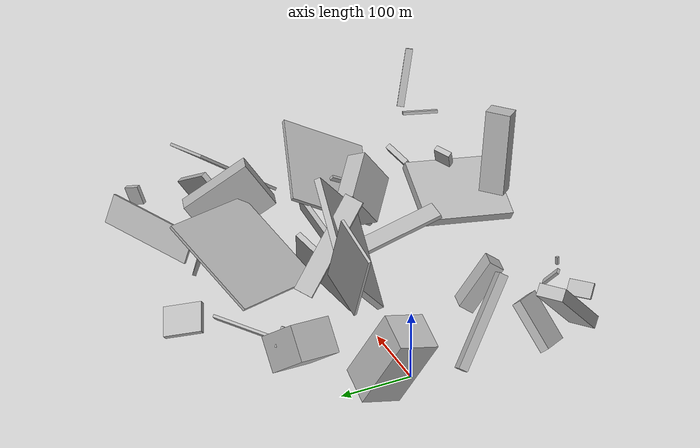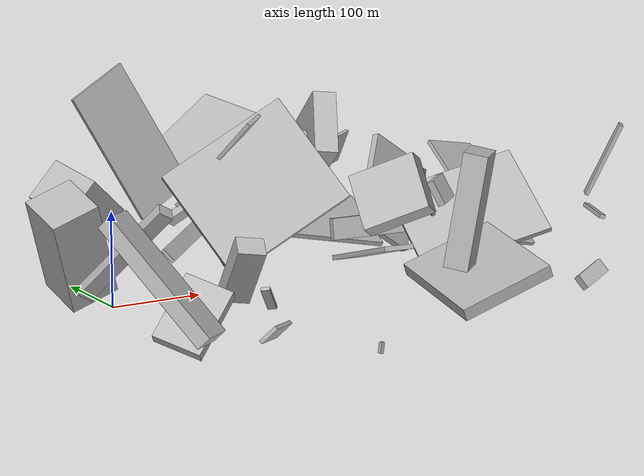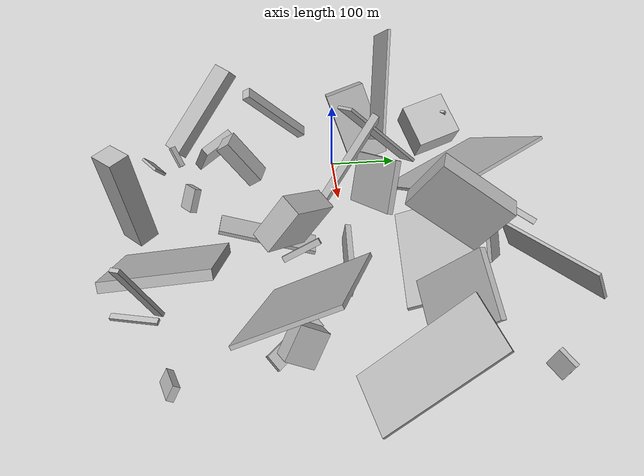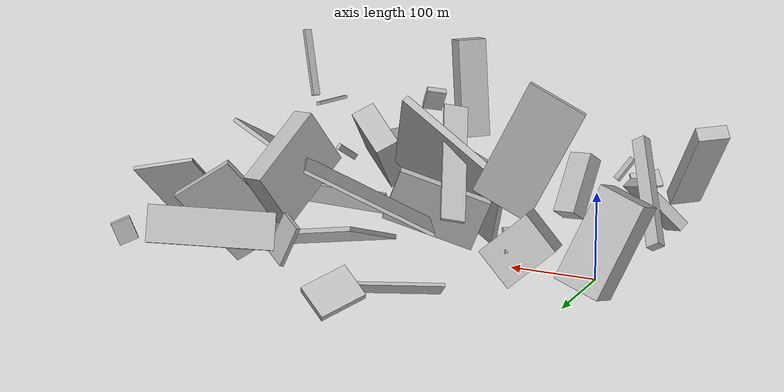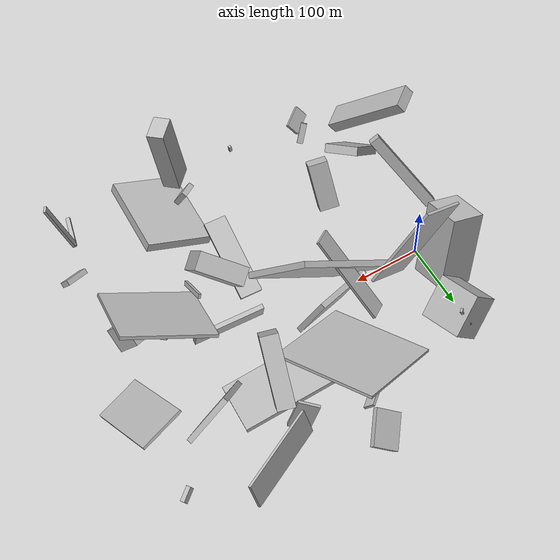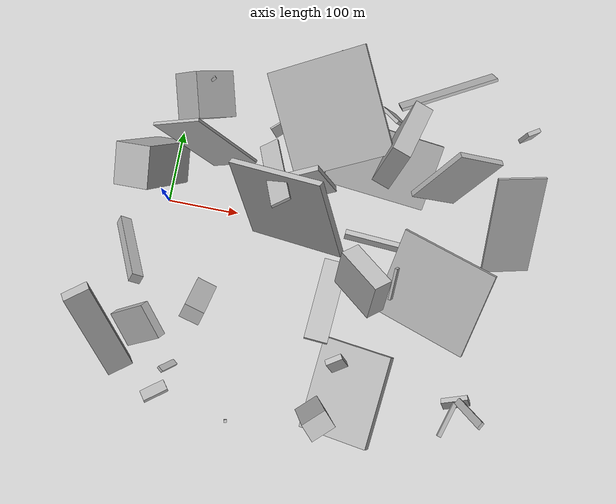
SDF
<sdf version="1.6">
 <world name="default">
  <scene>
   <sky><clouds><speed>12</speed></clouds></sky>
   <ambient>0.4 0.4 0.4 1</ambient>
   <background>0.7 0.7 0.7 1</background>
   <shadows>1</shadows>
  </scene>
  <gravity>0 0 -9.8066</gravity>
  <magnetic_field>6e-06 2.3e-05 -4.2e-05</magnetic_field>
  <physics default="0" name="default_physics" type="ode">
   <ode>
    <solver>
     <type>quick</type>
     <iters>10</iters>
     <sor>1.0</sor>
     <use_dynamic_moi_rescaling>0</use_dynamic_moi_rescaling>
    </solver>
    <constraints>
     <cfm>0</cfm>
     <erp>0.2</erp>
     <contact_max_correcting_vel>100</contact_max_correcting_vel>
     <contact_surface_layer>0.001</contact_surface_layer>
    </constraints>
   </ode>
   <max_step_size>0.004</max_step_size>
   <real_time_factor>1</real_time_factor>
   <real_time_update_rate>250</real_time_update_rate>
  </physics>
  <light name="sun" type="directional">
   <pose>0 0 10 0 0 0</pose>
   <diffuse>0.8 0.8 0.8 1</diffuse>
   <specular>0.2 0.2 0.2 1</specular>
   <attenuation>
    <range>1000</range>
    <constant>0.9</constant>
    <linear>0.01</linear>
    <quadratic>0.001</quadratic>
   </attenuation>
   <direction>-0.5 0.1 -0.9</direction>
  </light>
  <model name="building_1">
   <static>0</static>
   <pose>32.23924632587637 167.98821461134958 93.496382486021 -2.853511444051879 -0.9696005379585929 -1.0242284796814187</pose>
   <link name="link">
    <gravity>0</gravity>
    <pose>0 0 2.0 0 0 0</pose>
    <collision name="collision"><geometry><box><size>28 12 4</size></box></geometry></collision>
    <visual name="visual">
     <cast_shadows>0</cast_shadows>
     <geometry><box><size>28 12 4</size></box></geometry>
     <material>
      <script>
       <uri>model://HANNAS_wall/materials/scripts</uri>
       <uri>model://HANNAS_wall/materials/textures</uri>
       <name>vrc/HANNAS_wall</name>
      </script>
     </material>
    </visual>
   </link>
  </model>
  <model name="building_2">
   <static>0</static>
   <pose>-19.138040544420818 -164.57411652920075 40.58281139923651 -1.9480340134878802 -0.6900854163919891 -2.2171353671049476</pose>
   <link name="link">
    <gravity>0</gravity>
    <pose>0 0 26.0 0 0 0</pose>
    <collision name="collision"><geometry><box><size>13 73 52</size></box></geometry></collision>
    <visual name="visual">
     <cast_shadows>0</cast_shadows>
     <geometry><box><size>13 73 52</size></box></geometry>
     <material>
      <script>
       <uri>model://HANNAS_wall/materials/scripts</uri>
       <uri>model://HANNAS_wall/materials/textures</uri>
       <name>vrc/HANNAS_wall</name>
      </script>
     </material>
    </visual>
   </link>
  </model>
  <model name="building_3">
   <static>0</static>
   <pose>470.1156398621106 -198.74243483336562 27.193890512011933 -2.0633390087643213 -0.8798722783177413 2.2922697935301337</pose>
   <link name="link">
    <gravity>0</gravity>
    <pose>0 0 19.0 0 0 0</pose>
    <collision name="collision"><geometry><box><size>16 8 38</size></box></geometry></collision>
    <visual name="visual">
     <cast_shadows>0</cast_shadows>
     <geometry><box><size>16 8 38</size></box></geometry>
     <material>
      <script>
       <uri>model://HANNAS_wall/materials/scripts</uri>
       <uri>model://HANNAS_wall/materials/textures</uri>
       <name>vrc/HANNAS_wall</name>
      </script>
     </material>
    </visual>
   </link>
  </model>
  <model name="building_4">
   <static>0</static>
   <pose>169.8509307744462 3.0339183259878624 107.54974338801176 2.2946980428973944 -0.841025779876493 2.1084030695142073</pose>
   <link name="link">
    <gravity>0</gravity>
    <pose>0 0 4.5 0 0 0</pose>
    <collision name="collision"><geometry><box><size>129 150 9</size></box></geometry></collision>
    <visual name="visual">
     <cast_shadows>0</cast_shadows>
     <geometry><box><size>129 150 9</size></box></geometry>
     <material>
      <script>
       <uri>model://HANNAS_wall/materials/scripts</uri>
       <uri>model://HANNAS_wall/materials/textures</uri>
       <name>vrc/HANNAS_wall</name>
      </script>
     </material>
    </visual>
   </link>
  </model>
  <model name="building_5">
   <static>0</static>
   <pose>420.0100443587519 125.47247163728238 98.62933590897804 -2.740612003522984 -0.5995423962888876 -2.995203157644215</pose>
   <link name="link">
    <gravity>0</gravity>
    <pose>0 0 55.0 0 0 0</pose>
    <collision name="collision"><geometry><box><size>77 8 110</size></box></geometry></collision>
    <visual name="visual">
     <cast_shadows>0</cast_shadows>
     <geometry><box><size>77 8 110</size></box></geometry>
     <material>
      <script>
       <uri>model://HANNAS_wall/materials/scripts</uri>
       <uri>model://HANNAS_wall/materials/textures</uri>
       <name>vrc/HANNAS_wall</name>
      </script>
     </material>
    </visual>
   </link>
  </model>
  <model name="building_6">
   <static>0</static>
   <pose>205.30777524439725 145.64029803446638 110.37808923118143 0.22858056608928579 -0.4618451420639279 0.36064442775851435</pose>
   <link name="link">
    <gravity>0</gravity>
    <pose>0 0 2.0 0 0 0</pose>
    <collision name="collision"><geometry><box><size>150 150 4</size></box></geometry></collision>
    <visual name="visual">
     <cast_shadows>0</cast_shadows>
     <geometry><box><size>150 150 4</size></box></geometry>
     <material>
      <script>
       <uri>model://HANNAS_wall/materials/scripts</uri>
       <uri>model://HANNAS_wall/materials/textures</uri>
       <name>vrc/HANNAS_wall</name>
      </script>
     </material>
    </visual>
   </link>
  </model>
  <model name="building_7">
   <static>0</static>
   <pose>129.8112297405611 93.31537237565985 78.69960319353227 -0.7589037893028698 0.21718100927796893 -2.535519992996384</pose>
   <link name="link">
    <gravity>0</gravity>
    <pose>0 0 70.5 0 0 0</pose>
    <collision name="collision"><geometry><box><size>27 4 141</size></box></geometry></collision>
    <visual name="visual">
     <cast_shadows>0</cast_shadows>
     <geometry><box><size>27 4 141</size></box></geometry>
     <material>
      <script>
       <uri>model://HANNAS_wall/materials/scripts</uri>
       <uri>model://HANNAS_wall/materials/textures</uri>
       <name>vrc/HANNAS_wall</name>
      </script>
     </material>
    </visual>
   </link>
  </model>
  <model name="building_8">
   <static>0</static>
   <pose>346.34630437566557 -227.1645591297126 67.07244785363568 -2.7766231387401636 1.1782331081320923 0.2565500382011642</pose>
   <link name="link">
    <gravity>0</gravity>
    <pose>0 0 50.5 0 0 0</pose>
    <collision name="collision"><geometry><box><size>13 130 101</size></box></geometry></collision>
    <visual name="visual">
     <cast_shadows>0</cast_shadows>
     <geometry><box><size>13 130 101</size></box></geometry>
     <material>
      <script>
       <uri>model://HANNAS_wall/materials/scripts</uri>
       <uri>model://HANNAS_wall/materials/textures</uri>
       <name>vrc/HANNAS_wall</name>
      </script>
     </material>
    </visual>
   </link>
  </model>
  <model name="building_9">
   <static>0</static>
   <pose>390.1799400332799 -65.71808705739046 70.62006416299309 2.801826857180873 -0.508430732961161 1.3969040721414212</pose>
   <link name="link">
    <gravity>0</gravity>
    <pose>0 0 2.5 0 0 0</pose>
    <collision name="collision"><geometry><box><size>128 141 5</size></box></geometry></collision>
    <visual name="visual">
     <cast_shadows>0</cast_shadows>
     <geometry><box><size>128 141 5</size></box></geometry>
     <material>
      <script>
       <uri>model://HANNAS_wall/materials/scripts</uri>
       <uri>model://HANNAS_wall/materials/textures</uri>
       <name>vrc/HANNAS_wall</name>
      </script>
     </material>
    </visual>
   </link>
  </model>
  <model name="building_10">
   <static>0</static>
   <pose>-35.26731415434688 -86.58623491152328 82.75524912389315 2.183967373721866 -0.5393331467278796 1.167417959880295</pose>
   <link name="link">
    <gravity>0</gravity>
    <pose>0 0 8.0 0 0 0</pose>
    <collision name="collision"><geometry><box><size>13 135 16</size></box></geometry></collision>
    <visual name="visual">
     <cast_shadows>0</cast_shadows>
     <geometry><box><size>13 135 16</size></box></geometry>
     <material>
      <script>
       <uri>model://HANNAS_wall/materials/scripts</uri>
       <uri>model://HANNAS_wall/materials/textures</uri>
       <name>vrc/HANNAS_wall</name>
      </script>
     </material>
    </visual>
   </link>
  </model>
  <model name="building_11">
   <static>0</static>
   <pose>37.5540460429133 113.64272971074423 70.56951168543623 1.2428584620971357 0.8393693612606055 -3.1306714864171994</pose>
   <link name="link">
    <gravity>0</gravity>
    <pose>0 0 32.0 0 0 0</pose>
    <collision name="collision"><geometry><box><size>49 63 64</size></box></geometry></collision>
    <visual name="visual">
     <cast_shadows>0</cast_shadows>
     <geometry><box><size>49 63 64</size></box></geometry>
     <material>
      <script>
       <uri>model://HANNAS_wall/materials/scripts</uri>
       <uri>model://HANNAS_wall/materials/textures</uri>
       <name>vrc/HANNAS_wall</name>
      </script>
     </material>
    </visual>
   </link>
  </model>
  <model name="building_12">
   <static>0</static>
   <pose>321.10807878833765 114.24908311371524 121.6081704284702 1.4530371367257 -0.5876222261752148 -1.824581109045999</pose>
   <link name="link">
    <gravity>0</gravity>
    <pose>0 0 13.0 0 0 0</pose>
    <collision name="collision"><geometry><box><size>101 71 26</size></box></geometry></collision>
    <visual name="visual">
     <cast_shadows>0</cast_shadows>
     <geometry><box><size>101 71 26</size></box></geometry>
     <material>
      <script>
       <uri>model://HANNAS_wall/materials/scripts</uri>
       <uri>model://HANNAS_wall/materials/textures</uri>
       <name>vrc/HANNAS_wall</name>
      </script>
     </material>
    </visual>
   </link>
  </model>
  <model name="building_13">
   <static>0</static>
   <pose>90.31962387989496 55.90762351377773 90.5755620479772 0.48437255609591745 -0.15048406100306644 -1.4873776289669765</pose>
   <link name="link">
    <gravity>0</gravity>
    <pose>0 0 75.0 0 0 0</pose>
    <collision name="collision"><geometry><box><size>4 68 150</size></box></geometry></collision>
    <visual name="visual">
     <cast_shadows>0</cast_shadows>
     <geometry><box><size>4 68 150</size></box></geometry>
     <material>
      <script>
       <uri>model://HANNAS_wall/materials/scripts</uri>
       <uri>model://HANNAS_wall/materials/textures</uri>
       <name>vrc/HANNAS_wall</name>
      </script>
     </material>
    </visual>
   </link>
  </model>
  <model name="building_14">
   <static>0</static>
   <pose>52.773002833849716 -259.8275139908134 30.968454212424636 1.44576109653683 0.778109177307167 -1.0063489052417898</pose>
   <link name="link">
    <gravity>0</gravity>
    <pose>0 0 18.0 0 0 0</pose>
    <collision name="collision"><geometry><box><size>4 22 36</size></box></geometry></collision>
    <visual name="visual">
     <cast_shadows>0</cast_shadows>
     <geometry><box><size>4 22 36</size></box></geometry>
     <material>
      <script>
       <uri>model://HANNAS_wall/materials/scripts</uri>
       <uri>model://HANNAS_wall/materials/textures</uri>
       <name>vrc/HANNAS_wall</name>
      </script>
     </material>
    </visual>
   </link>
  </model>
  <model name="building_15">
   <static>0</static>
   <pose>165.81035600830677 155.02897787463735 19.2649053451471 2.9631125155632945 -0.7966406987154049 2.417721699330685</pose>
   <link name="link">
    <gravity>0</gravity>
    <pose>0 0 2.0 0 0 0</pose>
    <collision name="collision"><geometry><box><size>18 100 4</size></box></geometry></collision>
    <visual name="visual">
     <cast_shadows>0</cast_shadows>
     <geometry><box><size>18 100 4</size></box></geometry>
     <material>
      <script>
       <uri>model://HANNAS_wall/materials/scripts</uri>
       <uri>model://HANNAS_wall/materials/textures</uri>
       <name>vrc/HANNAS_wall</name>
      </script>
     </material>
    </visual>
   </link>
  </model>
  <model name="building_16">
   <static>0</static>
   <pose>140.38182819880552 -292.8967863688269 8.305976522094907 1.6836413235293035 -0.0346655374176548 1.6853438921083026</pose>
   <link name="link">
    <gravity>0</gravity>
    <pose>0 0 2.0 0 0 0</pose>
    <collision name="collision"><geometry><box><size>4 11 4</size></box></geometry></collision>
    <visual name="visual">
     <cast_shadows>0</cast_shadows>
     <geometry><box><size>4 11 4</size></box></geometry>
     <material>
      <script>
       <uri>model://HANNAS_wall/materials/scripts</uri>
       <uri>model://HANNAS_wall/materials/textures</uri>
       <name>vrc/HANNAS_wall</name>
      </script>
     </material>
    </visual>
   </link>
  </model>
  <model name="building_17">
   <static>0</static>
   <pose>309.79720983584104 -5.620111569418405 52.02535665318471 1.3998661580253793 -0.0018418892941368208 -0.05911304066370281</pose>
   <link name="link">
    <gravity>0</gravity>
    <pose>0 0 3.5 0 0 0</pose>
    <collision name="collision"><geometry><box><size>106 23 7</size></box></geometry></collision>
    <visual name="visual">
     <cast_shadows>0</cast_shadows>
     <geometry><box><size>106 23 7</size></box></geometry>
     <material>
      <script>
       <uri>model://HANNAS_wall/materials/scripts</uri>
       <uri>model://HANNAS_wall/materials/textures</uri>
       <name>vrc/HANNAS_wall</name>
      </script>
     </material>
    </visual>
   </link>
  </model>
  <model name="building_18">
   <static>0</static>
   <pose>450.4680538381615 41.768123349539145 63.45025768010785 1.8241603868718785 -0.6737378118665834 1.6627031223682711</pose>
   <link name="link">
    <gravity>0</gravity>
    <pose>0 0 35.0 0 0 0</pose>
    <collision name="collision"><geometry><box><size>150 4 70</size></box></geometry></collision>
    <visual name="visual">
     <cast_shadows>0</cast_shadows>
     <geometry><box><size>150 4 70</size></box></geometry>
     <material>
      <script>
       <uri>model://HANNAS_wall/materials/scripts</uri>
       <uri>model://HANNAS_wall/materials/textures</uri>
       <name>vrc/HANNAS_wall</name>
      </script>
     </material>
    </visual>
   </link>
  </model>
  <model name="building_19">
   <static>0</static>
   <pose>256.5282293729427 -253.43841738569006 66.40480000187031 0.16558672079570447 -0.008785839098449561 0.758397952263774</pose>
   <link name="link">
    <gravity>0</gravity>
    <pose>0 0 59.0 0 0 0</pose>
    <collision name="collision"><geometry><box><size>35 25 118</size></box></geometry></collision>
    <visual name="visual">
     <cast_shadows>0</cast_shadows>
     <geometry><box><size>35 25 118</size></box></geometry>
     <material>
      <script>
       <uri>model://HANNAS_wall/materials/scripts</uri>
       <uri>model://HANNAS_wall/materials/textures</uri>
       <name>vrc/HANNAS_wall</name>
      </script>
     </material>
    </visual>
   </link>
  </model>
  <model name="building_20">
   <static>0</static>
   <pose>-28.39826661691658 68.0531813273845 68.21645419207175 -2.298756743394608 -1.086589439366853 -2.3870399804562186</pose>
   <link name="link">
    <gravity>0</gravity>
    <pose>0 0 29.5 0 0 0</pose>
    <collision name="collision"><geometry><box><size>112 53 59</size></box></geometry></collision>
    <visual name="visual">
     <cast_shadows>0</cast_shadows>
     <geometry><box><size>112 53 59</size></box></geometry>
     <material>
      <script>
       <uri>model://HANNAS_wall/materials/scripts</uri>
       <uri>model://HANNAS_wall/materials/textures</uri>
       <name>vrc/HANNAS_wall</name>
      </script>
     </material>
    </visual>
   </link>
  </model>
  <model name="building_21">
   <static>0</static>
   <pose>290.0686785106149 104.74497726230886 40.80452479512406 0.37460520645854706 0.1972740580499234 -0.06361242323517385</pose>
   <link name="link">
    <gravity>0</gravity>
    <pose>0 0 2.5 0 0 0</pose>
    <collision name="collision"><geometry><box><size>150 96 5</size></box></geometry></collision>
    <visual name="visual">
     <cast_shadows>0</cast_shadows>
     <geometry><box><size>150 96 5</size></box></geometry>
     <material>
      <script>
       <uri>model://HANNAS_wall/materials/scripts</uri>
       <uri>model://HANNAS_wall/materials/textures</uri>
       <name>vrc/HANNAS_wall</name>
      </script>
     </material>
    </visual>
   </link>
  </model>
  <model name="building_22">
   <static>0</static>
   <pose>61.912351087752086 -133.9631928747175 60.941914457516106 1.7838556997139436 0.9441498063812312 1.4808845997323001</pose>
   <link name="link">
    <gravity>0</gravity>
    <pose>0 0 14.5 0 0 0</pose>
    <collision name="collision"><geometry><box><size>73 22 29</size></box></geometry></collision>
    <visual name="visual">
     <cast_shadows>0</cast_shadows>
     <geometry><box><size>73 22 29</size></box></geometry>
     <material>
      <script>
       <uri>model://HANNAS_wall/materials/scripts</uri>
       <uri>model://HANNAS_wall/materials/textures</uri>
       <name>vrc/HANNAS_wall</name>
      </script>
     </material>
    </visual>
   </link>
  </model>
  <model name="building_23">
   <static>0</static>
   <pose>281.6998642233379 -78.82110921234079 105.41369645083924 2.049832659357663 0.3944490844382266 2.453156305386371</pose>
   <link name="link">
    <gravity>0</gravity>
    <pose>0 0 14.0 0 0 0</pose>
    <collision name="collision"><geometry><box><size>73 62 28</size></box></geometry></collision>
    <visual name="visual">
     <cast_shadows>0</cast_shadows>
     <geometry><box><size>73 62 28</size></box></geometry>
     <material>
      <script>
       <uri>model://HANNAS_wall/materials/scripts</uri>
       <uri>model://HANNAS_wall/materials/textures</uri>
       <name>vrc/HANNAS_wall</name>
      </script>
     </material>
    </visual>
   </link>
  </model>
  <model name="building_24">
   <static>0</static>
   <pose>431.8983850808151 -101.85222774513318 17.709009255093108 1.3030100178479886 -0.7503214452073794 -2.1986585174342</pose>
   <link name="link">
    <gravity>0</gravity>
    <pose>0 0 35.0 0 0 0</pose>
    <collision name="collision"><geometry><box><size>20 6 70</size></box></geometry></collision>
    <visual name="visual">
     <cast_shadows>0</cast_shadows>
     <geometry><box><size>20 6 70</size></box></geometry>
     <material>
      <script>
       <uri>model://HANNAS_wall/materials/scripts</uri>
       <uri>model://HANNAS_wall/materials/textures</uri>
       <name>vrc/HANNAS_wall</name>
      </script>
     </material>
    </visual>
   </link>
  </model>
  <model name="building_25">
   <static>0</static>
   <pose>53.19360229916445 -231.53035494763358 56.57054605053821 2.9236781679097064 0.864669331342381 0.7158238857297609</pose>
   <link name="link">
    <gravity>0</gravity>
    <pose>0 0 2.0 0 0 0</pose>
    <collision name="collision"><geometry><box><size>31 9 4</size></box></geometry></collision>
    <visual name="visual">
     <cast_shadows>0</cast_shadows>
     <geometry><box><size>31 9 4</size></box></geometry>
     <material>
      <script>
       <uri>model://HANNAS_wall/materials/scripts</uri>
       <uri>model://HANNAS_wall/materials/textures</uri>
       <name>vrc/HANNAS_wall</name>
      </script>
     </material>
    </visual>
   </link>
  </model>
  <model name="building_26">
   <static>0</static>
   <pose>-51.09405868119817 -198.37437170679857 74.3477775820992 0.052743371715297985 -0.7989625566499194 2.1896759189961985</pose>
   <link name="link">
    <gravity>0</gravity>
    <pose>0 0 8.5 0 0 0</pose>
    <collision name="collision"><geometry><box><size>150 37 17</size></box></geometry></collision>
    <visual name="visual">
     <cast_shadows>0</cast_shadows>
     <geometry><box><size>150 37 17</size></box></geometry>
     <material>
      <script>
       <uri>model://HANNAS_wall/materials/scripts</uri>
       <uri>model://HANNAS_wall/materials/textures</uri>
       <name>vrc/HANNAS_wall</name>
      </script>
     </material>
    </visual>
   </link>
  </model>
  <model name="building_27">
   <static>0</static>
   <pose>429.45466221452045 -253.4798724610012 95.71954598452236 1.441019446482779 1.299569715121227 2.737832883030147</pose>
   <link name="link">
    <gravity>0</gravity>
    <pose>0 0 24.5 0 0 0</pose>
    <collision name="collision"><geometry><box><size>4 6 49</size></box></geometry></collision>
    <visual name="visual">
     <cast_shadows>0</cast_shadows>
     <geometry><box><size>4 6 49</size></box></geometry>
     <material>
      <script>
       <uri>model://HANNAS_wall/materials/scripts</uri>
       <uri>model://HANNAS_wall/materials/textures</uri>
       <name>vrc/HANNAS_wall</name>
      </script>
     </material>
    </visual>
   </link>
  </model>
  <model name="building_28">
   <static>0</static>
   <pose>171.22766083708737 45.01196717976972 69.82343938555373 1.2283902800097273 -0.3508668060159091 0.373194103403068</pose>
   <link name="link">
    <gravity>0</gravity>
    <pose>0 0 4.0 0 0 0</pose>
    <collision name="collision"><geometry><box><size>105 69 8</size></box></geometry></collision>
    <visual name="visual">
     <cast_shadows>0</cast_shadows>
     <geometry><box><size>105 69 8</size></box></geometry>
     <material>
      <script>
       <uri>model://HANNAS_wall/materials/scripts</uri>
       <uri>model://HANNAS_wall/materials/textures</uri>
       <name>vrc/HANNAS_wall</name>
      </script>
     </material>
    </visual>
   </link>
  </model>
  <model name="building_29">
   <static>0</static>
   <pose>358.05958071080903 215.23226117517726 77.39055067292739 -2.9160508216211576 -1.1389576378800603 -1.288651748955418</pose>
   <link name="link">
    <gravity>0</gravity>
    <pose>0 0 2.0 0 0 0</pose>
    <collision name="collision"><geometry><box><size>41 137 4</size></box></geometry></collision>
    <visual name="visual">
     <cast_shadows>0</cast_shadows>
     <geometry><box><size>41 137 4</size></box></geometry>
     <material>
      <script>
       <uri>model://HANNAS_wall/materials/scripts</uri>
       <uri>model://HANNAS_wall/materials/textures</uri>
       <name>vrc/HANNAS_wall</name>
      </script>
     </material>
    </visual>
   </link>
  </model>
  <model name="building_30">
   <static>0</static>
   <pose>334.1418749416783 -44.39471763191711 99.8173052306942 2.1317576647919534 -0.3675473436693436 -0.2323065229015074</pose>
   <link name="link">
    <gravity>0</gravity>
    <pose>0 0 23.5 0 0 0</pose>
    <collision name="collision"><geometry><box><size>4 7 47</size></box></geometry></collision>
    <visual name="visual">
     <cast_shadows>0</cast_shadows>
     <geometry><box><size>4 7 47</size></box></geometry>
     <material>
      <script>
       <uri>model://HANNAS_wall/materials/scripts</uri>
       <uri>model://HANNAS_wall/materials/textures</uri>
       <name>vrc/HANNAS_wall</name>
      </script>
     </material>
    </visual>
   </link>
  </model>
  <model name="building_31">
   <static>0</static>
   <pose>429.14294057213544 -72.91242672808994 47.648115968937866 1.0888207996392292 -0.8887370734766987 2.330882180320858</pose>
   <link name="link">
    <gravity>0</gravity>
    <pose>0 0 10.5 0 0 0</pose>
    <collision name="collision"><geometry><box><size>40 36 21</size></box></geometry></collision>
    <visual name="visual">
     <cast_shadows>0</cast_shadows>
     <geometry><box><size>40 36 21</size></box></geometry>
     <material>
      <script>
       <uri>model://HANNAS_wall/materials/scripts</uri>
       <uri>model://HANNAS_wall/materials/textures</uri>
       <name>vrc/HANNAS_wall</name>
      </script>
     </material>
    </visual>
   </link>
  </model>
  <model name="building_32">
   <static>0</static>
   <pose>283.31069870796193 176.95686874462152 52.81489484681112 -0.7835603081779878 -1.1493950512497213 -2.958637474709837</pose>
   <link name="link">
    <gravity>0</gravity>
    <pose>0 0 16.0 0 0 0</pose>
    <collision name="collision"><geometry><box><size>48 5 32</size></box></geometry></collision>
    <visual name="visual">
     <cast_shadows>0</cast_shadows>
     <geometry><box><size>48 5 32</size></box></geometry>
     <material>
      <script>
       <uri>model://HANNAS_wall/materials/scripts</uri>
       <uri>model://HANNAS_wall/materials/textures</uri>
       <name>vrc/HANNAS_wall</name>
      </script>
     </material>
    </visual>
   </link>
  </model>
  <model name="building_33">
   <static>0</static>
   <pose>444.6017069844633 -203.44658470867847 108.67486725580588 0.4130662750879272 -0.14431740501926568 1.0758958020664842</pose>
   <link name="link">
    <gravity>0</gravity>
    <pose>0 0 41.0 0 0 0</pose>
    <collision name="collision"><geometry><box><size>10 4 82</size></box></geometry></collision>
    <visual name="visual">
     <cast_shadows>0</cast_shadows>
     <geometry><box><size>10 4 82</size></box></geometry>
     <material>
      <script>
       <uri>model://HANNAS_wall/materials/scripts</uri>
       <uri>model://HANNAS_wall/materials/textures</uri>
       <name>vrc/HANNAS_wall</name>
      </script>
     </material>
    </visual>
   </link>
  </model>
  <model name="building_34">
   <static>0</static>
   <pose>264.80357080982037 -103.49820945891446 48.993670564103354 1.534402341777539 1.281995796451438 -1.6719369389720673</pose>
   <link name="link">
    <gravity>0</gravity>
    <pose>0 0 16.5 0 0 0</pose>
    <collision name="collision"><geometry><box><size>5 121 33</size></box></geometry></collision>
    <visual name="visual">
     <cast_shadows>0</cast_shadows>
     <geometry><box><size>5 121 33</size></box></geometry>
     <material>
      <script>
       <uri>model://HANNAS_wall/materials/scripts</uri>
       <uri>model://HANNAS_wall/materials/textures</uri>
       <name>vrc/HANNAS_wall</name>
      </script>
     </material>
    </visual>
   </link>
  </model>
  <model name="building_35">
   <static>0</static>
   <pose>202.6422931283229 235.01519119844176 34.85865102594682 2.7682975231784175 -0.5962941377934889 -0.42794263467676896</pose>
   <link name="link">
    <gravity>0</gravity>
    <pose>0 0 4.0 0 0 0</pose>
    <collision name="collision"><geometry><box><size>42 54 8</size></box></geometry></collision>
    <visual name="visual">
     <cast_shadows>0</cast_shadows>
     <geometry><box><size>42 54 8</size></box></geometry>
     <material>
      <script>
       <uri>model://HANNAS_wall/materials/scripts</uri>
       <uri>model://HANNAS_wall/materials/textures</uri>
       <name>vrc/HANNAS_wall</name>
      </script>
     </material>
    </visual>
   </link>
  </model>
  <model name="building_36">
   <static>0</static>
   <pose>482.30036112666687 179.41504646312433 33.709148919668536 -0.031159069352875792 0.3571230710477239 0.6124325986804208</pose>
   <link name="link">
    <gravity>0</gravity>
    <pose>0 0 13.5 0 0 0</pose>
    <collision name="collision"><geometry><box><size>22 6 27</size></box></geometry></collision>
    <visual name="visual">
     <cast_shadows>0</cast_shadows>
     <geometry><box><size>22 6 27</size></box></geometry>
     <material>
      <script>
       <uri>model://HANNAS_wall/materials/scripts</uri>
       <uri>model://HANNAS_wall/materials/textures</uri>
       <name>vrc/HANNAS_wall</name>
      </script>
     </material>
    </visual>
   </link>
  </model>
  <model name="building_37">
   <static>0</static>
   <pose>282.2598871729143 -189.61439146516517 115.69051468623206 0.4466657165834132 0.17487480239115388 -2.5660878268237557</pose>
   <link name="link">
    <gravity>0</gravity>
    <pose>0 0 13.5 0 0 0</pose>
    <collision name="collision"><geometry><box><size>23 8 27</size></box></geometry></collision>
    <visual name="visual">
     <cast_shadows>0</cast_shadows>
     <geometry><box><size>23 8 27</size></box></geometry>
     <material>
      <script>
       <uri>model://HANNAS_wall/materials/scripts</uri>
       <uri>model://HANNAS_wall/materials/textures</uri>
       <name>vrc/HANNAS_wall</name>
      </script>
     </material>
    </visual>
   </link>
  </model>
 </world>
</sdf>
